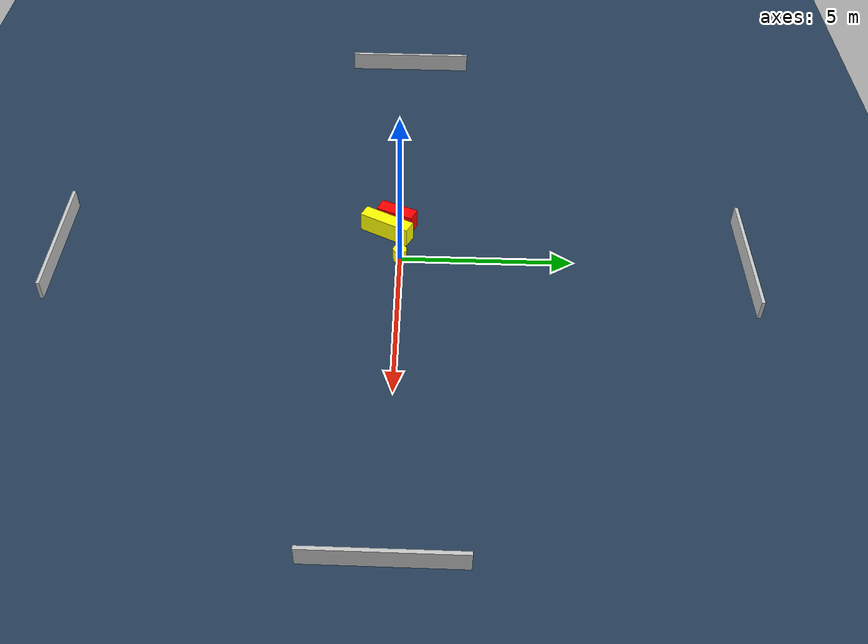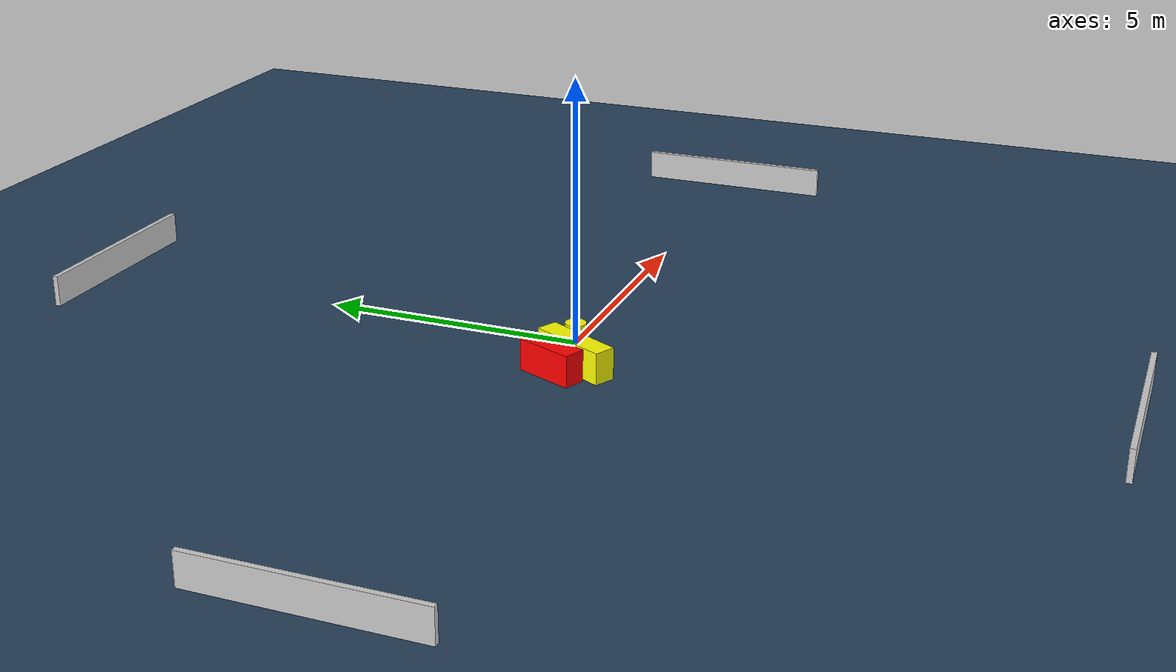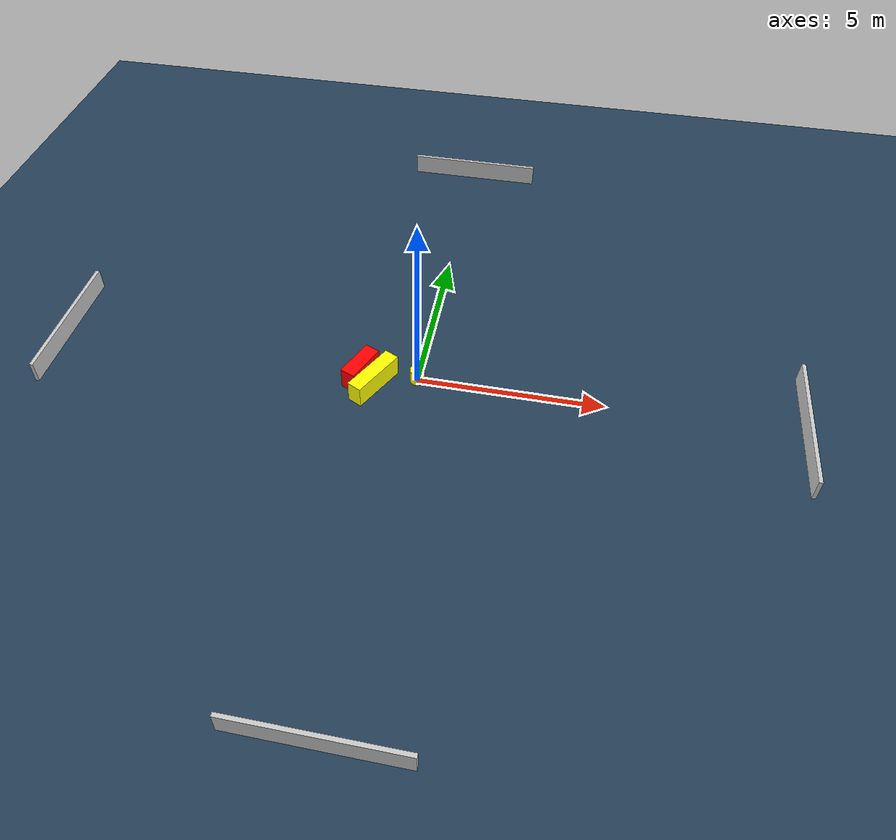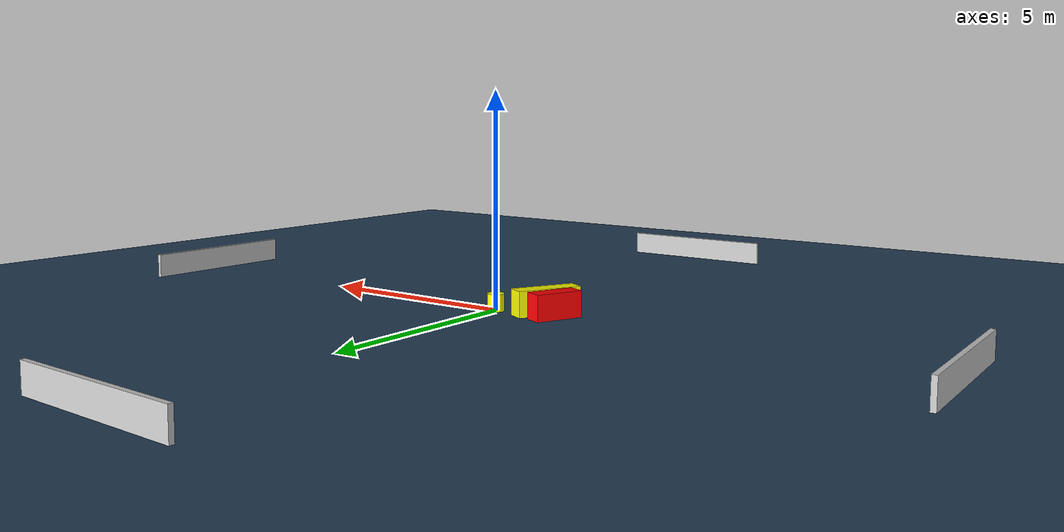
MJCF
<?xml version="1.0" ?>
<mujoco model="generated_environment">
  <option timestep="0.01" integrator="RK4" cone="elliptic"/>
  <default>
    <geom density="1"/>
  </default>
  <asset>
    <texture builtin="gradient" height="3072" name="skybox" rgb1="0.3 0.5 0.7" rgb2="0 0 0" type="skybox" width="512"/>
    <texture builtin="checker" height="300" name="groundplane" rgb1="0.2 0.3 0.4" rgb2="0.1 0.2 0.3" type="2d" width="300"/>
    <material name="groundplane" reflectance="0.2" texrepeat="5 5" texture="groundplane"/>
  </asset>
  <worldbody>
    <light dir="0 0 -1" directional="true" pos="0 0 1.5"/>
    <geom condim="3" friction="0.5 0.005 0.001" material="groundplane" name="floor" pos="0 0 0" size="0 0 0.05" type="plane"/>
    <body name="walls">
      <geom name="wall_1" condim="4" pos="-10.0 0.0 0.3" rgba="0.800000011920929 0.800000011920929 0.800000011920929 1.0" size="0.05 2.0 0.3" type="box"/>
      <geom name="wall_2" condim="4" pos="10.0 0.0 0.3" rgba="0.800000011920929 0.800000011920929 0.800000011920929 1.0" size="0.05 2.0 0.3" type="box"/>
      <geom name="wall_3" condim="4" pos="0.0 -10.0 0.3" rgba="0.800000011920929 0.800000011920929 0.800000011920929 1.0" size="2.0 0.05 0.3" type="box"/>
      <geom name="wall_4" condim="4" pos="0.0 10.0 0.3" rgba="0.800000011920929 0.800000011920929 0.800000011920929 1.0" size="2.0 0.05 0.3" type="box"/>
    </body>
    <body name="robot">
      <joint name="joint_x" type="slide" pos="0 0 0" axis="1 0 0"/>
      <joint name="joint_y" type="slide" pos="0 0 0" axis="0 1 0"/>
      <geom name="robot" type="cylinder" pos="0.0 0.0 0.2" size="0.2 0.2 0.0" mass="5.0" friction="1.0 0.005 0.0001" condim="4" rgba="1.0 1.0 0.0 1.0"/>
    </body>
    <body name="obstacle_1_movable">
      <geom name="obstacle_1_movable" condim="4" pos="-1.1005561868349436 -0.4271164679115913 0.3" euler="0 0 152.88310309986977" friction="0.0 0.005 0.001" rgba="1.0 1.0 0.0 1.0" size="0.20432593369102 0.7776272719040145 0.3" type="box" mass="0.1"/>
      <joint type="free"/>
    </body>
    <body name="obstacle_2_static">
      <geom name="obstacle_2_static" condim="4" pos="-1.5224356217678519 -0.14248600627541105 0.3" euler="0 0 247.06426463310933" friction="0.0 0.005 0.001" rgba="1.0 0.0 0.0 1.0" size="0.5700914747300658 0.21001480529803332 0.3" type="box"/>
    </body>
  </worldbody>
  <actuator>
    <motor name="actuator_x" joint="joint_x" gear="1" ctrlrange="-1 1"/>
    <motor name="actuator_y" joint="joint_y" gear="1" ctrlrange="-1 1"/>
  </actuator>
</mujoco>
